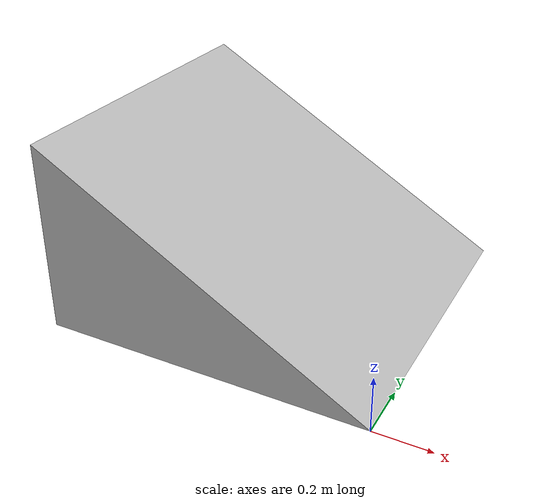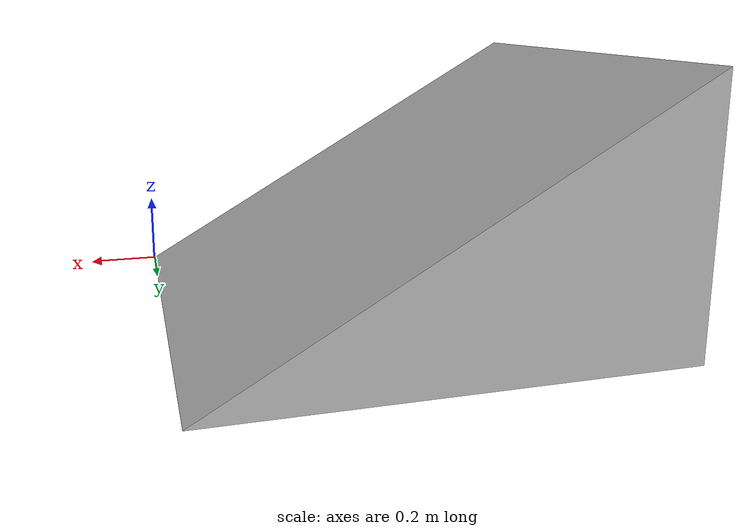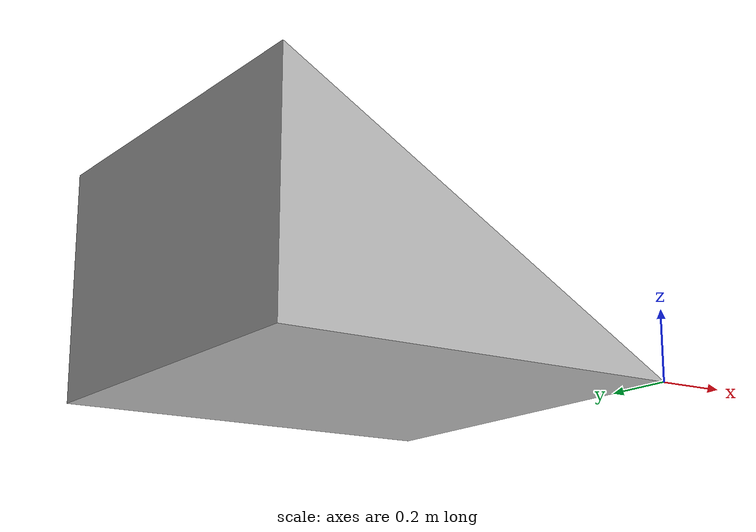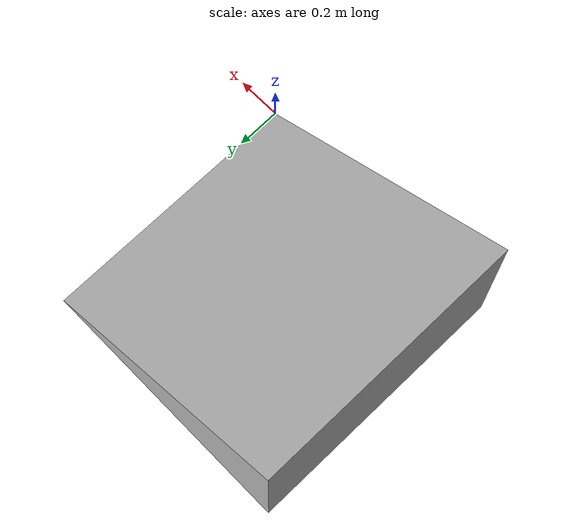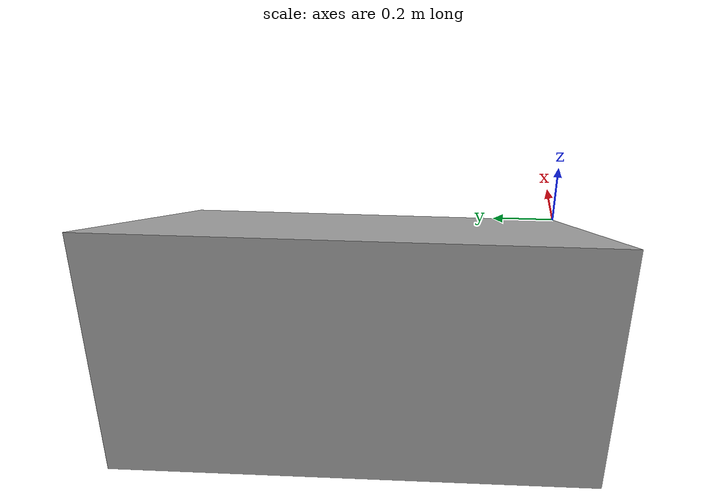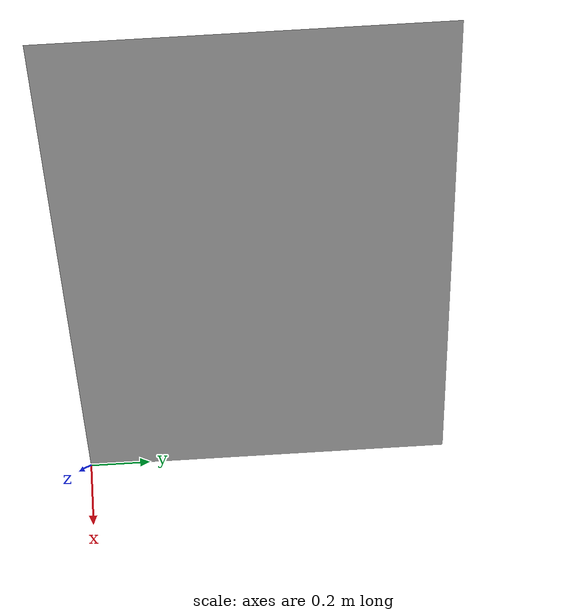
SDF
<?xml version="1.0" ?>
<sdf version="1.6">
  <model name="30degramp">
    <static>true</static>
    <pose>0 0 0 0 0 0</pose>
    <link name="link">
      <collision name="collision">
        <geometry>
          <mesh>
            <scale>0.001 0.001 0.001</scale>
            <uri>model://30degramp/30degramp.stl</uri>
          </mesh>
        </geometry>
        <surface>
          <friction>
            <ode>
              <mu>100</mu>
              <mu2>50</mu2>
            </ode>
          </friction>
        </surface>
      </collision>
      <visual name="visual">
        <geometry>
          <mesh>
            <scale>0.001 0.001 0.001</scale>
            <uri>model://30degramp/30degramp.stl</uri>
          </mesh>
        </geometry>
      </visual>
    </link>
  </model>
</sdf>
